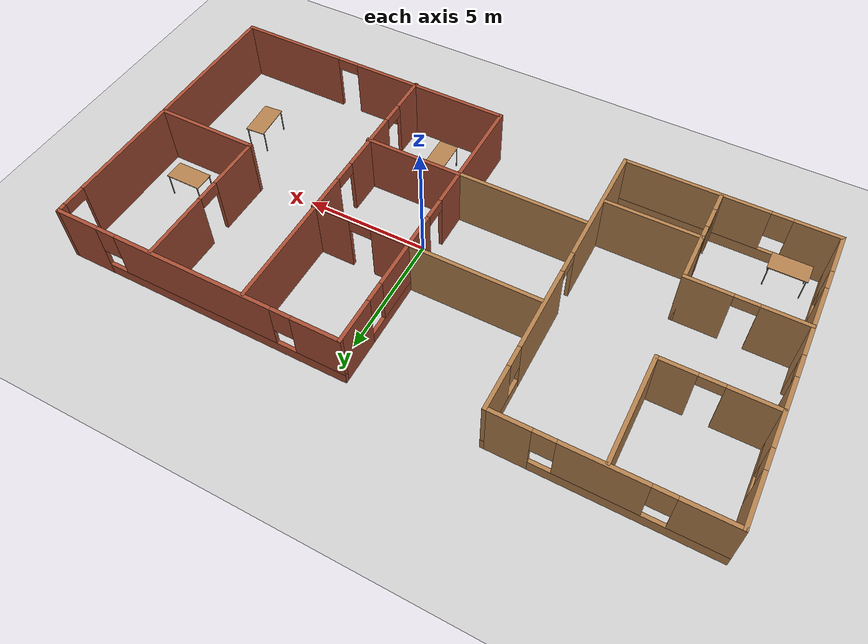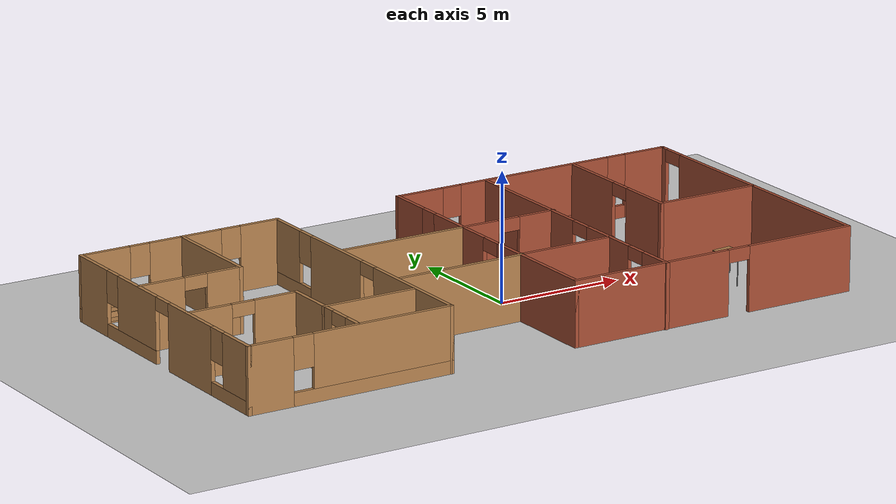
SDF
<sdf version="1.6">
 <world name="default">
  <plugin name="hello" filename="libhello.so"/>
  <light name="sun" type="directional">
   <pose>0 0 10 0 -0 0</pose>
   <diffuse>0.8 0.8 0.8 1</diffuse>
   <specular>0.2 0.2 0.2 1</specular>
   <attenuation>
    <range>1000</range>
    <constant>0.9</constant>
    <linear>0.01</linear>
    <quadratic>0.001</quadratic>
   </attenuation>
   <direction>-0.5 0.1 -0.9</direction>
  </light>
  <model name="ground_plane">
   <static>1</static>
   <link name="link">
    <collision name="collision">
     <geometry><plane><normal>0 0 1</normal><size>100 100</size></plane></geometry>
     <surface><friction><ode><mu>100</mu><mu2>50</mu2></ode></friction></surface>
    </collision>
    <visual name="visual">
     <cast_shadows>0</cast_shadows>
     <geometry><plane><normal>0 0 1</normal><size>100 100</size></plane></geometry>
     <material>
      <script><uri>file://media/materials/scripts/gazebo.material</uri><name>Gazebo/Grey</name></script>
     </material>
    </visual>
   </link>
  </model>
  <gravity>0 0 -9.8</gravity>
  <magnetic_field>6e-06 2.3e-05 -4.2e-05</magnetic_field>
  <atmosphere type="adiabatic"/>
  <physics name="default_physics" default="0" type="ode">
   <max_step_size>0.001</max_step_size>
   <real_time_factor>1</real_time_factor>
   <real_time_update_rate>1000</real_time_update_rate>
  </physics>
  <scene><ambient>0.4 0.4 0.4 1</ambient><background>0.7 0.7 0.7 1</background><shadows>1</shadows></scene>
  <spherical_coordinates>
   <surface_model>EARTH_WGS84</surface_model>
   <latitude_deg>0</latitude_deg>
   <longitude_deg>0</longitude_deg>
   <elevation>0</elevation>
   <heading_deg>0</heading_deg>
  </spherical_coordinates>
  <model name="myhouse">
   <pose>-1.2083 0.35018 0 0 -0 0</pose>
   <link name="Wall_0">
    <pose>6.64634 -5.89616 0 0 -0 0</pose>
    <visual name="Wall_0_Visual_0">
     <pose>-2.69638 0 1.25 0 -0 0</pose>
     <geometry><box><size>6.60723 0.15 2.5</size></box></geometry>
     <material>
      <script><uri>file://media/materials/scripts/gazebo.material</uri><name>Gazebo/Bricks</name></script>
      <ambient>0.760784 0.662745 0.627451 1</ambient>
     </material>
     <meta><layer>0</layer></meta>
    </visual>
    <collision name="Wall_0_Collision_0">
     <geometry><box><size>6.60723 0.15 2.5</size></box></geometry>
     <pose>-2.69638 0 1.25 0 -0 0</pose>
    </collision>
    <visual name="Wall_0_Visual_1">
     <pose>3.75362 0 1.25 0 -0 0</pose>
     <geometry><box><size>4.49277 0.15 2.5</size></box></geometry>
     <material>
      <script><uri>file://media/materials/scripts/gazebo.material</uri><name>Gazebo/Bricks</name></script>
      <ambient>0.760784 0.662745 0.627451 1</ambient>
     </material>
     <meta><layer>0</layer></meta>
    </visual>
    <collision name="Wall_0_Collision_1">
     <geometry><box><size>4.49277 0.15 2.5</size></box></geometry>
     <pose>3.75362 0 1.25 0 -0 0</pose>
    </collision>
    <visual name="Wall_0_Visual_2">
     <pose>1.05723 0 2.25 0 -0 0</pose>
     <geometry><box><size>0.9 0.15 0.5</size></box></geometry>
     <material>
      <script><uri>file://media/materials/scripts/gazebo.material</uri><name>Gazebo/Bricks</name></script>
      <ambient>0.760784 0.662745 0.627451 1</ambient>
     </material>
     <meta><layer>0</layer></meta>
    </visual>
    <collision name="Wall_0_Collision_2">
     <geometry><box><size>0.9 0.15 0.5</size></box></geometry>
     <pose>1.05723 0 2.25 0 -0 0</pose>
    </collision>
   </link>
   <link name="Wall_1">
    <pose>12.5713 0.028839 0 0 -0 1.5708</pose>
    <visual name="Wall_1_Visual_0">
     <pose>-0.649931 0 1.25 0 -0 0</pose>
     <geometry><box><size>10.7001 0.15 2.5</size></box></geometry>
     <material>
      <script><uri>file://media/materials/scripts/gazebo.material</uri><name>Gazebo/Bricks</name></script>
      <ambient>0.760784 0.662745 0.627451 1</ambient>
     </material>
     <meta><layer>0</layer></meta>
    </visual>
    <collision name="Wall_1_Collision_0">
     <geometry><box><size>10.7001 0.15 2.5</size></box></geometry>
     <pose>-0.649931 0 1.25 0 -0 0</pose>
    </collision>
    <visual name="Wall_1_Visual_1">
     <pose>5.80007 0 1.25 0 -0 0</pose>
     <geometry><box><size>0.399862 0.15 2.5</size></box></geometry>
     <material>
      <script><uri>file://media/materials/scripts/gazebo.material</uri><name>Gazebo/Bricks</name></script>
      <ambient>0.760784 0.662745 0.627451 1</ambient>
     </material>
     <meta><layer>0</layer></meta>
    </visual>
    <collision name="Wall_1_Collision_1">
     <geometry><box><size>0.399862 0.15 2.5</size></box></geometry>
     <pose>5.80007 0 1.25 0 -0 0</pose>
    </collision>
    <visual name="Wall_1_Visual_2">
     <pose>5.15014 0 2.25 0 -0 0</pose>
     <geometry><box><size>0.9 0.15 0.5</size></box></geometry>
     <material>
      <script><uri>file://media/materials/scripts/gazebo.material</uri><name>Gazebo/Bricks</name></script>
      <ambient>0.760784 0.662745 0.627451 1</ambient>
     </material>
     <meta><layer>0</layer></meta>
    </visual>
    <collision name="Wall_1_Collision_2">
     <geometry><box><size>0.9 0.15 0.5</size></box></geometry>
     <pose>5.15014 0 2.25 0 -0 0</pose>
    </collision>
   </link>
   <link name="Wall_10">
    <pose>8.43683 2.96482 0 0 -0 1.5708</pose>
    <visual name="Wall_10_Visual_0">
     <pose>-1.85682 0 1.25 0 -0 0</pose>
     <geometry><box><size>2.28635 0.15 2.5</size></box></geometry>
     <material>
      <script><uri>file://media/materials/scripts/gazebo.material</uri><name>Gazebo/Bricks</name></script>
      <ambient>0.760784 0.662745 0.627451 1</ambient>
     </material>
     <meta><layer>0</layer></meta>
    </visual>
    <collision name="Wall_10_Collision_0">
     <geometry><box><size>2.28635 0.15 2.5</size></box></geometry>
     <pose>-1.85682 0 1.25 0 -0 0</pose>
    </collision>
    <visual name="Wall_10_Visual_1">
     <pose>1.59318 0 1.25 0 -0 0</pose>
     <geometry><box><size>2.81365 0.15 2.5</size></box></geometry>
     <material>
      <script><uri>file://media/materials/scripts/gazebo.material</uri><name>Gazebo/Bricks</name></script>
      <ambient>0.760784 0.662745 0.627451 1</ambient>
     </material>
     <meta><layer>0</layer></meta>
    </visual>
    <collision name="Wall_10_Collision_1">
     <geometry><box><size>2.81365 0.15 2.5</size></box></geometry>
     <pose>1.59318 0 1.25 0 -0 0</pose>
    </collision>
    <visual name="Wall_10_Visual_2">
     <pose>-0.26365 0 2.25 0 -0 0</pose>
     <geometry><box><size>0.9 0.15 0.5</size></box></geometry>
     <material>
      <script><uri>file://media/materials/scripts/gazebo.material</uri><name>Gazebo/Bricks</name></script>
      <ambient>0.760784 0.662745 0.627451 1</ambient>
     </material>
     <meta><layer>0</layer></meta>
    </visual>
    <collision name="Wall_10_Collision_2">
     <geometry><box><size>0.9 0.15 0.5</size></box></geometry>
     <pose>-0.26365 0 2.25 0 -0 0</pose>
    </collision>
   </link>
   <link name="Wall_12">
    <pose>2.68459 1.47756 0 0 -0 0</pose>
    <visual name="Wall_12_Visual_0">
     <pose>-1.2392 0 1.25 0 -0 0</pose>
     <geometry><box><size>1.5216 0.15 2.5</size></box></geometry>
     <material>
      <script><uri>file://media/materials/scripts/gazebo.material</uri><name>Gazebo/Bricks</name></script>
      <ambient>0.760784 0.662745 0.627451 1</ambient>
     </material>
     <meta><layer>0</layer></meta>
    </visual>
    <collision name="Wall_12_Collision_0">
     <geometry><box><size>1.5216 0.15 2.5</size></box></geometry>
     <pose>-1.2392 0 1.25 0 -0 0</pose>
    </collision>
    <visual name="Wall_12_Visual_1">
     <pose>1.2108 0 1.25 0 -0 0</pose>
     <geometry><box><size>1.57841 0.15 2.5</size></box></geometry>
     <material>
      <script><uri>file://media/materials/scripts/gazebo.material</uri><name>Gazebo/Bricks</name></script>
      <ambient>0.760784 0.662745 0.627451 1</ambient>
     </material>
     <meta><layer>0</layer></meta>
    </visual>
    <collision name="Wall_12_Collision_1">
     <geometry><box><size>1.57841 0.15 2.5</size></box></geometry>
     <pose>1.2108 0 1.25 0 -0 0</pose>
    </collision>
    <visual name="Wall_12_Visual_2">
     <pose>-0.028405 0 2.25 0 -0 0</pose>
     <geometry><box><size>0.9 0.15 0.5</size></box></geometry>
     <material>
      <script><uri>file://media/materials/scripts/gazebo.material</uri><name>Gazebo/Bricks</name></script>
      <ambient>0.760784 0.662745 0.627451 1</ambient>
     </material>
     <meta><layer>0</layer></meta>
    </visual>
    <collision name="Wall_12_Collision_2">
     <geometry><box><size>0.9 0.15 0.5</size></box></geometry>
     <pose>-0.028405 0 2.25 0 -0 0</pose>
    </collision>
   </link>
   <link name="Wall_14">
    <collision name="Wall_14_Collision">
     <geometry><box><size>4 0.15 2.5</size></box></geometry>
     <pose>0 0 1.25 0 -0 0</pose>
    </collision>
    <visual name="Wall_14_Visual">
     <pose>0 0 1.25 0 -0 0</pose>
     <geometry><box><size>4 0.15 2.5</size></box></geometry>
     <material>
      <script><uri>file://media/materials/scripts/gazebo.material</uri><name>Gazebo/Bricks</name></script>
      <ambient>0.760784 0.662745 0.627451 1</ambient>
     </material>
     <meta><layer>0</layer></meta>
    </visual>
    <pose>2.68459 -2.34622 0 0 -0 0</pose>
   </link>
   <link name="Wall_16">
    <collision name="Wall_16_Collision">
     <geometry><box><size>5.25 0.15 2.5</size></box></geometry>
     <pose>0 0 1.25 0 -0 0</pose>
    </collision>
    <visual name="Wall_16_Visual">
     <pose>0 0 1.25 0 -0 0</pose>
     <geometry><box><size>5.25 0.15 2.5</size></box></geometry>
     <material>
      <script><uri>file://media/materials/scripts/gazebo.material</uri><name>Gazebo/Wood</name></script>
      <ambient>0 0 0 1</ambient>
     </material>
     <meta><layer>0</layer></meta>
    </visual>
    <pose>-1.79041 1.47756 0 0 -0 3.14159</pose>
   </link>
   <link name="Wall_18">
    <collision name="Wall_18_Collision">
     <geometry><box><size>5.25 0.15 2.5</size></box></geometry>
     <pose>0 0 1.25 0 -0 0</pose>
    </collision>
    <visual name="Wall_18_Visual">
     <pose>0 0 1.25 0 -0 0</pose>
     <geometry><box><size>5.25 0.15 2.5</size></box></geometry>
     <material>
      <script><uri>file://media/materials/scripts/gazebo.material</uri><name>Gazebo/Wood</name></script>
      <ambient>0 0 0 1</ambient>
     </material>
     <meta><layer>0</layer></meta>
    </visual>
    <pose>-1.79041 -2.37244 0 0 -0 0</pose>
   </link>
   <link name="Wall_2">
    <pose>6.64634 5.95384 0 0 -0 3.14159</pose>
    <visual name="Wall_2_Visual_0">
     <pose>-5.07459 0 1.25 0 -0 0</pose>
     <geometry><box><size>1.85083 0.15 2.5</size></box></geometry>
     <material>
      <script><uri>file://media/materials/scripts/gazebo.material</uri><name>Gazebo/Bricks</name></script>
      <ambient>0.760784 0.662745 0.627451 1</ambient>
     </material>
     <meta><layer>0</layer></meta>
    </visual>
    <collision name="Wall_2_Collision_0">
     <geometry><box><size>1.85083 0.15 2.5</size></box></geometry>
     <pose>-5.07459 0 1.25 0 -0 0</pose>
    </collision>
    <visual name="Wall_2_Visual_1">
     <pose>0.925414 0 0.25 0 -0 0</pose>
     <geometry><box><size>10.1492 0.15 0.5</size></box></geometry>
     <material>
      <script><uri>file://media/materials/scripts/gazebo.material</uri><name>Gazebo/Bricks</name></script>
      <ambient>0.760784 0.662745 0.627451 1</ambient>
     </material>
     <meta><layer>0</layer></meta>
    </visual>
    <collision name="Wall_2_Collision_1">
     <geometry><box><size>10.1492 0.15 0.5</size></box></geometry>
     <pose>0.925414 0 0.25 0 -0 0</pose>
    </collision>
    <visual name="Wall_2_Visual_2">
     <pose>-0.06305 0 1.5 0 -0 0</pose>
     <geometry><box><size>6.57224 0.15 2</size></box></geometry>
     <material>
      <script><uri>file://media/materials/scripts/gazebo.material</uri><name>Gazebo/Bricks</name></script>
      <ambient>0.760784 0.662745 0.627451 1</ambient>
     </material>
     <meta><layer>0</layer></meta>
    </visual>
    <collision name="Wall_2_Collision_2">
     <geometry><box><size>6.57224 0.15 2</size></box></geometry>
     <pose>-0.06305 0 1.5 0 -0 0</pose>
    </collision>
    <visual name="Wall_2_Visual_3">
     <pose>5.01154 0 1.5 0 -0 0</pose>
     <geometry><box><size>1.97693 0.15 2</size></box></geometry>
     <material>
      <script><uri>file://media/materials/scripts/gazebo.material</uri><name>Gazebo/Bricks</name></script>
      <ambient>0.760784 0.662745 0.627451 1</ambient>
     </material>
     <meta><layer>0</layer></meta>
    </visual>
    <collision name="Wall_2_Collision_3">
     <geometry><box><size>1.97693 0.15 2</size></box></geometry>
     <pose>5.01154 0 1.5 0 -0 0</pose>
    </collision>
    <visual name="Wall_2_Visual_4">
     <pose>-3.74917 0 1.9 0 -0 0</pose>
     <geometry><box><size>0.8 0.15 1.2</size></box></geometry>
     <material>
      <script><uri>file://media/materials/scripts/gazebo.material</uri><name>Gazebo/Bricks</name></script>
      <ambient>0.760784 0.662745 0.627451 1</ambient>
     </material>
     <meta><layer>0</layer></meta>
    </visual>
    <collision name="Wall_2_Collision_4">
     <geometry><box><size>0.8 0.15 1.2</size></box></geometry>
     <pose>-3.74917 0 1.9 0 -0 0</pose>
    </collision>
    <visual name="Wall_2_Visual_5">
     <pose>3.62307 0 1.9 0 -0 0</pose>
     <geometry><box><size>0.8 0.15 1.2</size></box></geometry>
     <material>
      <script><uri>file://media/materials/scripts/gazebo.material</uri><name>Gazebo/Bricks</name></script>
      <ambient>0.760784 0.662745 0.627451 1</ambient>
     </material>
     <meta><layer>0</layer></meta>
    </visual>
    <collision name="Wall_2_Collision_5">
     <geometry><box><size>0.8 0.15 1.2</size></box></geometry>
     <pose>3.62307 0 1.9 0 -0 0</pose>
    </collision>
   </link>
   <link name="Wall_21">
    <pose>-4.47134 0.030313 0 0 -0 1.5708</pose>
    <visual name="Wall_21_Visual_0">
     <pose>-3.44968 0 1.25 0 -0 0</pose>
     <geometry><box><size>5.10065 0.15 2.5</size></box></geometry>
     <material>
      <script><uri>file://media/materials/scripts/gazebo.material</uri><name>Gazebo/Wood</name></script>
      <ambient>0.333333 1 0 1</ambient>
     </material>
     <meta><layer>0</layer></meta>
    </visual>
    <collision name="Wall_21_Collision_0">
     <geometry><box><size>5.10065 0.15 2.5</size></box></geometry>
     <pose>-3.44968 0 1.25 0 -0 0</pose>
    </collision>
    <visual name="Wall_21_Visual_1">
     <pose>1.71697 0 1.25 0 -0 0</pose>
     <geometry><box><size>3.43263 0.15 2.5</size></box></geometry>
     <material>
      <script><uri>file://media/materials/scripts/gazebo.material</uri><name>Gazebo/Wood</name></script>
      <ambient>0.333333 1 0 1</ambient>
     </material>
     <meta><layer>0</layer></meta>
    </visual>
    <collision name="Wall_21_Collision_1">
     <geometry><box><size>3.43263 0.15 2.5</size></box></geometry>
     <pose>1.71697 0 1.25 0 -0 0</pose>
    </collision>
    <visual name="Wall_21_Visual_2">
     <pose>4.71664 0 0.25 0 -0 0</pose>
     <geometry><box><size>2.56672 0.15 0.5</size></box></geometry>
     <material>
      <script><uri>file://media/materials/scripts/gazebo.material</uri><name>Gazebo/Wood</name></script>
      <ambient>0.333333 1 0 1</ambient>
     </material>
     <meta><layer>0</layer></meta>
    </visual>
    <collision name="Wall_21_Collision_2">
     <geometry><box><size>2.56672 0.15 0.5</size></box></geometry>
     <pose>4.71664 0 0.25 0 -0 0</pose>
    </collision>
    <visual name="Wall_21_Visual_3">
     <pose>5.11664 0 1.5 0 -0 0</pose>
     <geometry><box><size>1.76672 0.15 2</size></box></geometry>
     <material>
      <script><uri>file://media/materials/scripts/gazebo.material</uri><name>Gazebo/Wood</name></script>
      <ambient>0.333333 1 0 1</ambient>
     </material>
     <meta><layer>0</layer></meta>
    </visual>
    <collision name="Wall_21_Collision_3">
     <geometry><box><size>1.76672 0.15 2</size></box></geometry>
     <pose>5.11664 0 1.5 0 -0 0</pose>
    </collision>
    <visual name="Wall_21_Visual_4">
     <pose>3.83328 0 1.9 0 -0 0</pose>
     <geometry><box><size>0.8 0.15 1.2</size></box></geometry>
     <material>
      <script><uri>file://media/materials/scripts/gazebo.material</uri><name>Gazebo/Wood</name></script>
      <ambient>0.333333 1 0 1</ambient>
     </material>
     <meta><layer>0</layer></meta>
    </visual>
    <collision name="Wall_21_Collision_4">
     <geometry><box><size>0.8 0.15 1.2</size></box></geometry>
     <pose>3.83328 0 1.9 0 -0 0</pose>
    </collision>
    <visual name="Wall_21_Visual_5">
     <pose>-0.449349 0 2.25 0 -0 0</pose>
     <geometry><box><size>0.9 0.15 0.5</size></box></geometry>
     <material>
      <script><uri>file://media/materials/scripts/gazebo.material</uri><name>Gazebo/Wood</name></script>
      <ambient>0.333333 1 0 1</ambient>
     </material>
     <meta><layer>0</layer></meta>
    </visual>
    <collision name="Wall_21_Collision_5">
     <geometry><box><size>0.9 0.15 0.5</size></box></geometry>
     <pose>-0.449349 0 2.25 0 -0 0</pose>
    </collision>
   </link>
   <link name="Wall_22">
    <pose>-8.52134 5.95531 0 0 -0 3.14159</pose>
    <visual name="Wall_22_Visual_0">
     <pose>-3.29332 0 1.25 0 -0 0</pose>
     <geometry><box><size>1.66337 0.15 2.5</size></box></geometry>
     <material>
      <script><uri>file://media/materials/scripts/gazebo.material</uri><name>Gazebo/Wood</name></script>
      <ambient>0.333333 1 0 1</ambient>
     </material>
     <meta><layer>0</layer></meta>
    </visual>
    <collision name="Wall_22_Collision_0">
     <geometry><box><size>1.66337 0.15 2.5</size></box></geometry>
     <pose>-3.29332 0 1.25 0 -0 0</pose>
    </collision>
    <visual name="Wall_22_Visual_1">
     <pose>0.831683 0 0.25 0 -0 0</pose>
     <geometry><box><size>6.58663 0.15 0.5</size></box></geometry>
     <material>
      <script><uri>file://media/materials/scripts/gazebo.material</uri><name>Gazebo/Wood</name></script>
      <ambient>0.333333 1 0 1</ambient>
     </material>
     <meta><layer>0</layer></meta>
    </visual>
    <collision name="Wall_22_Collision_1">
     <geometry><box><size>6.58663 0.15 0.5</size></box></geometry>
     <pose>0.831683 0 0.25 0 -0 0</pose>
    </collision>
    <visual name="Wall_22_Visual_2">
     <pose>-0.180335 0 1.5 0 -0 0</pose>
     <geometry><box><size>2.9626 0.15 2</size></box></geometry>
     <material>
      <script><uri>file://media/materials/scripts/gazebo.material</uri><name>Gazebo/Wood</name></script>
      <ambient>0.333333 1 0 1</ambient>
     </material>
     <meta><layer>0</layer></meta>
    </visual>
    <collision name="Wall_22_Collision_2">
     <geometry><box><size>2.9626 0.15 2</size></box></geometry>
     <pose>-0.180335 0 1.5 0 -0 0</pose>
    </collision>
    <visual name="Wall_22_Visual_3">
     <pose>3.11298 0 1.5 0 -0 0</pose>
     <geometry><box><size>2.02404 0.15 2</size></box></geometry>
     <material>
      <script><uri>file://media/materials/scripts/gazebo.material</uri><name>Gazebo/Wood</name></script>
      <ambient>0.333333 1 0 1</ambient>
     </material>
     <meta><layer>0</layer></meta>
    </visual>
    <collision name="Wall_22_Collision_3">
     <geometry><box><size>2.02404 0.15 2</size></box></geometry>
     <pose>3.11298 0 1.5 0 -0 0</pose>
    </collision>
    <visual name="Wall_22_Visual_4">
     <pose>-2.06163 0 1.9 0 -0 0</pose>
     <geometry><box><size>0.8 0.15 1.2</size></box></geometry>
     <material>
      <script><uri>file://media/materials/scripts/gazebo.material</uri><name>Gazebo/Wood</name></script>
      <ambient>0.333333 1 0 1</ambient>
     </material>
     <meta><layer>0</layer></meta>
    </visual>
    <collision name="Wall_22_Collision_4">
     <geometry><box><size>0.8 0.15 1.2</size></box></geometry>
     <pose>-2.06163 0 1.9 0 -0 0</pose>
    </collision>
    <visual name="Wall_22_Visual_5">
     <pose>1.70096 0 1.9 0 -0 0</pose>
     <geometry><box><size>0.8 0.15 1.2</size></box></geometry>
     <material>
      <script><uri>file://media/materials/scripts/gazebo.material</uri><name>Gazebo/Wood</name></script>
      <ambient>0.333333 1 0 1</ambient>
     </material>
     <meta><layer>0</layer></meta>
    </visual>
    <collision name="Wall_22_Collision_5">
     <geometry><box><size>0.8 0.15 1.2</size></box></geometry>
     <pose>1.70096 0 1.9 0 -0 0</pose>
    </collision>
   </link>
   <link name="Wall_23">
    <pose>-12.5713 0.030313 0 0 0 -1.5708</pose>
    <visual name="Wall_23_Visual_0">
     <pose>-4.96369 0 1.25 0 -0 0</pose>
     <geometry><box><size>2.07262 0.15 2.5</size></box></geometry>
     <material>
      <script><uri>file://media/materials/scripts/gazebo.material</uri><name>Gazebo/Wood</name></script>
      <ambient>0.333333 1 0 1</ambient>
     </material>
     <meta><layer>0</layer></meta>
    </visual>
    <collision name="Wall_23_Collision_0">
     <geometry><box><size>2.07262 0.15 2.5</size></box></geometry>
     <pose>-4.96369 0 1.25 0 -0 0</pose>
    </collision>
    <visual name="Wall_23_Visual_1">
     <pose>1.98856 0 1.25 0 -0 0</pose>
     <geometry><box><size>2.97378 0.15 2.5</size></box></geometry>
     <material>
      <script><uri>file://media/materials/scripts/gazebo.material</uri><name>Gazebo/Wood</name></script>
      <ambient>0.333333 1 0 1</ambient>
     </material>
     <meta><layer>0</layer></meta>
    </visual>
    <collision name="Wall_23_Collision_1">
     <geometry><box><size>2.97378 0.15 2.5</size></box></geometry>
     <pose>1.98856 0 1.25 0 -0 0</pose>
    </collision>
    <visual name="Wall_23_Visual_2">
     <pose>-2.16285 0 0.25 0 -0 0</pose>
     <geometry><box><size>3.52906 0.15 0.5</size></box></geometry>
     <material>
      <script><uri>file://media/materials/scripts/gazebo.material</uri><name>Gazebo/Wood</name></script>
      <ambient>0.333333 1 0 1</ambient>
     </material>
     <meta><layer>0</layer></meta>
    </visual>
    <collision name="Wall_23_Collision_2">
     <geometry><box><size>3.52906 0.15 0.5</size></box></geometry>
     <pose>-2.16285 0 0.25 0 -0 0</pose>
    </collision>
    <visual name="Wall_23_Visual_3">
     <pose>4.73773 0 0.25 0 -0 0</pose>
     <geometry><box><size>2.52454 0.15 0.5</size></box></geometry>
     <material>
      <script><uri>file://media/materials/scripts/gazebo.material</uri><name>Gazebo/Wood</name></script>
      <ambient>0.333333 1 0 1</ambient>
     </material>
     <meta><layer>0</layer></meta>
    </visual>
    <collision name="Wall_23_Collision_3">
     <geometry><box><size>2.52454 0.15 0.5</size></box></geometry>
     <pose>4.73773 0 0.25 0 -0 0</pose>
    </collision>
    <visual name="Wall_23_Visual_4">
     <pose>-1.76285 0 1.5 0 -0 0</pose>
     <geometry><box><size>2.72906 0.15 2</size></box></geometry>
     <material>
      <script><uri>file://media/materials/scripts/gazebo.material</uri><name>Gazebo/Wood</name></script>
      <ambient>0.333333 1 0 1</ambient>
     </material>
     <meta><layer>0</layer></meta>
    </visual>
    <collision name="Wall_23_Collision_4">
     <geometry><box><size>2.72906 0.15 2</size></box></geometry>
     <pose>-1.76285 0 1.5 0 -0 0</pose>
    </collision>
    <visual name="Wall_23_Visual_5">
     <pose>-1.76285 0 1.5 0 -0 0</pose>
     <geometry><box><size>2.72906 0.15 2</size></box></geometry>
     <material>
      <script><uri>file://media/materials/scripts/gazebo.material</uri><name>Gazebo/Wood</name></script>
      <ambient>0.333333 1 0 1</ambient>
     </material>
     <meta><layer>0</layer></meta>
    </visual>
    <collision name="Wall_23_Collision_5">
     <geometry><box><size>2.72906 0.15 2</size></box></geometry>
     <pose>-1.76285 0 1.5 0 -0 0</pose>
    </collision>
    <visual name="Wall_23_Visual_6">
     <pose>5.13773 0 1.5 0 -0 0</pose>
     <geometry><box><size>1.72454 0.15 2</size></box></geometry>
     <material>
      <script><uri>file://media/materials/scripts/gazebo.material</uri><name>Gazebo/Wood</name></script>
      <ambient>0.333333 1 0 1</ambient>
     </material>
     <meta><layer>0</layer></meta>
    </visual>
    <collision name="Wall_23_Collision_6">
     <geometry><box><size>1.72454 0.15 2</size></box></geometry>
     <pose>5.13773 0 1.5 0 -0 0</pose>
    </collision>
    <visual name="Wall_23_Visual_7">
     <pose>-3.52738 0 1.9 0 -0 0</pose>
     <geometry><box><size>0.8 0.15 1.2</size></box></geometry>
     <material>
      <script><uri>file://media/materials/scripts/gazebo.material</uri><name>Gazebo/Wood</name></script>
      <ambient>0.333333 1 0 1</ambient>
     </material>
     <meta><layer>0</layer></meta>
    </visual>
    <collision name="Wall_23_Collision_7">
     <geometry><box><size>0.8 0.15 1.2</size></box></geometry>
     <pose>-3.52738 0 1.9 0 -0 0</pose>
    </collision>
    <visual name="Wall_23_Visual_8">
     <pose>3.87546 0 1.9 0 -0 0</pose>
     <geometry><box><size>0.8 0.15 1.2</size></box></geometry>
     <material>
      <script><uri>file://media/materials/scripts/gazebo.material</uri><name>Gazebo/Wood</name></script>
      <ambient>0.333333 1 0 1</ambient>
     </material>
     <meta><layer>0</layer></meta>
    </visual>
    <collision name="Wall_23_Collision_8">
     <geometry><box><size>0.8 0.15 1.2</size></box></geometry>
     <pose>3.87546 0 1.9 0 -0 0</pose>
    </collision>
    <visual name="Wall_23_Visual_9">
     <pose>0.051676 0 2.25 0 -0 0</pose>
     <geometry><box><size>0.9 0.15 0.5</size></box></geometry>
     <material>
      <script><uri>file://media/materials/scripts/gazebo.material</uri><name>Gazebo/Wood</name></script>
      <ambient>0.333333 1 0 1</ambient>
     </material>
     <meta><layer>0</layer></meta>
    </visual>
    <collision name="Wall_23_Collision_9">
     <geometry><box><size>0.9 0.15 0.5</size></box></geometry>
     <pose>0.051676 0 2.25 0 -0 0</pose>
    </collision>
    <visual name="Wall_23_Visual_10">
     <pose>0.051676 0 2.25 0 -0 0</pose>
     <geometry><box><size>0.9 0.15 0.5</size></box></geometry>
     <material>
      <script><uri>file://media/materials/scripts/gazebo.material</uri><name>Gazebo/Wood</name></script>
      <ambient>0.333333 1 0 1</ambient>
     </material>
     <meta><layer>0</layer></meta>
    </visual>
    <collision name="Wall_23_Collision_10">
     <geometry><box><size>0.9 0.15 0.5</size></box></geometry>
     <pose>0.051676 0 2.25 0 -0 0</pose>
    </collision>
   </link>
   <link name="Wall_24">
    <pose>-8.52134 -5.89469 0 0 -0 0</pose>
    <visual name="Wall_24_Visual_0">
     <pose>-3.22005 0 1.25 0 -0 0</pose>
     <geometry><box><size>1.8099 0.15 2.5</size></box></geometry>
     <material>
      <script><uri>file://media/materials/scripts/gazebo.material</uri><name>Gazebo/Wood</name></script>
      <ambient>0.333333 1 0 1</ambient>
     </material>
     <meta><layer>0</layer></meta>
    </visual>
    <collision name="Wall_24_Collision_0">
     <geometry><box><size>1.8099 0.15 2.5</size></box></geometry>
     <pose>-3.22005 0 1.25 0 -0 0</pose>
    </collision>
    <visual name="Wall_24_Visual_1">
     <pose>0.904952 0 0.25 0 -0 0</pose>
     <geometry><box><size>6.4401 0.15 0.5</size></box></geometry>
     <material>
      <script><uri>file://media/materials/scripts/gazebo.material</uri><name>Gazebo/Wood</name></script>
      <ambient>0.333333 1 0 1</ambient>
     </material>
     <meta><layer>0</layer></meta>
    </visual>
    <collision name="Wall_24_Collision_1">
     <geometry><box><size>6.4401 0.15 0.5</size></box></geometry>
     <pose>0.904952 0 0.25 0 -0 0</pose>
    </collision>
    <visual name="Wall_24_Visual_2">
     <pose>1.30495 0 1.5 0 -0 0</pose>
     <geometry><box><size>5.6401 0.15 2</size></box></geometry>
     <material>
      <script><uri>file://media/materials/scripts/gazebo.material</uri><name>Gazebo/Wood</name></script>
      <ambient>0.333333 1 0 1</ambient>
     </material>
     <meta><layer>0</layer></meta>
    </visual>
    <collision name="Wall_24_Collision_2">
     <geometry><box><size>5.6401 0.15 2</size></box></geometry>
     <pose>1.30495 0 1.5 0 -0 0</pose>
    </collision>
    <visual name="Wall_24_Visual_3">
     <pose>-1.9151 0 1.9 0 -0 0</pose>
     <geometry><box><size>0.8 0.15 1.2</size></box></geometry>
     <material>
      <script><uri>file://media/materials/scripts/gazebo.material</uri><name>Gazebo/Wood</name></script>
      <ambient>0.333333 1 0 1</ambient>
     </material>
     <meta><layer>0</layer></meta>
    </visual>
    <collision name="Wall_24_Collision_3">
     <geometry><box><size>0.8 0.15 1.2</size></box></geometry>
     <pose>-1.9151 0 1.9 0 -0 0</pose>
    </collision>
   </link>
   <link name="Wall_26">
    <pose>-10.4972 1.78346 0 0 -0 0</pose>
    <visual name="Wall_26_Visual_0">
     <pose>-1.18066 0 1.25 0 -0 0</pose>
     <geometry><box><size>1.88868 0.15 2.5</size></box></geometry>
     <material>
      <script><uri>file://media/materials/scripts/gazebo.material</uri><name>Gazebo/Wood</name></script>
      <ambient>0.333333 1 0 1</ambient>
     </material>
     <meta><layer>0</layer></meta>
    </visual>
    <collision name="Wall_26_Collision_0">
     <geometry><box><size>1.88868 0.15 2.5</size></box></geometry>
     <pose>-1.18066 0 1.25 0 -0 0</pose>
    </collision>
    <visual name="Wall_26_Visual_1">
     <pose>1.39434 0 1.25 0 -0 0</pose>
     <geometry><box><size>1.46132 0.15 2.5</size></box></geometry>
     <material>
      <script><uri>file://media/materials/scripts/gazebo.material</uri><name>Gazebo/Wood</name></script>
      <ambient>0.333333 1 0 1</ambient>
     </material>
     <meta><layer>0</layer></meta>
    </visual>
    <collision name="Wall_26_Collision_1">
     <geometry><box><size>1.46132 0.15 2.5</size></box></geometry>
     <pose>1.39434 0 1.25 0 -0 0</pose>
    </collision>
    <visual name="Wall_26_Visual_2">
     <pose>0.213676 0 2.25 0 -0 0</pose>
     <geometry><box><size>0.9 0.15 0.5</size></box></geometry>
     <material>
      <script><uri>file://media/materials/scripts/gazebo.material</uri><name>Gazebo/Wood</name></script>
      <ambient>0.333333 1 0 1</ambient>
     </material>
     <meta><layer>0</layer></meta>
    </visual>
    <collision name="Wall_26_Collision_2">
     <geometry><box><size>0.9 0.15 0.5</size></box></geometry>
     <pose>0.213676 0 2.25 0 -0 0</pose>
    </collision>
   </link>
   <link name="Wall_27">
    <collision name="Wall_27_Collision">
     <geometry><box><size>4.25 0.15 2.5</size></box></geometry>
     <pose>0 0 1.25 0 -0 0</pose>
    </collision>
    <visual name="Wall_27_Visual">
     <pose>0 0 1.25 0 -0 0</pose>
     <geometry><box><size>4.25 0.15 2.5</size></box></geometry>
     <material>
      <script><uri>file://media/materials/scripts/gazebo.material</uri><name>Gazebo/Wood</name></script>
      <ambient>0.333333 1 0 1</ambient>
     </material>
     <meta><layer>0</layer></meta>
    </visual>
    <pose>-8.44716 3.83346 0 0 -0 1.5708</pose>
   </link>
   <link name="Wall_29">
    <pose>-10.3722 -1.70382 0 0 -0 0</pose>
    <visual name="Wall_29_Visual_0">
     <pose>-1.35155 0 1.25 0 -0 0</pose>
     <geometry><box><size>1.79691 0.15 2.5</size></box></geometry>
     <material>
      <script><uri>file://media/materials/scripts/gazebo.material</uri><name>Gazebo/Wood</name></script>
      <ambient>0.333333 1 0 1</ambient>
     </material>
     <meta><layer>0</layer></meta>
    </visual>
    <collision name="Wall_29_Collision_0">
     <geometry><box><size>1.79691 0.15 2.5</size></box></geometry>
     <pose>-1.35155 0 1.25 0 -0 0</pose>
    </collision>
    <visual name="Wall_29_Visual_1">
     <pose>1.34845 0 1.25 0 -0 0</pose>
     <geometry><box><size>1.80309 0.15 2.5</size></box></geometry>
     <material>
      <script><uri>file://media/materials/scripts/gazebo.material</uri><name>Gazebo/Wood</name></script>
      <ambient>0.333333 1 0 1</ambient>
     </material>
     <meta><layer>0</layer></meta>
    </visual>
    <collision name="Wall_29_Collision_1">
     <geometry><box><size>1.80309 0.15 2.5</size></box></geometry>
     <pose>1.34845 0 1.25 0 -0 0</pose>
    </collision>
    <visual name="Wall_29_Visual_2">
     <pose>-0.003094 0 2.25 0 -0 0</pose>
     <geometry><box><size>0.9 0.15 0.5</size></box></geometry>
     <material>
      <script><uri>file://media/materials/scripts/gazebo.material</uri><name>Gazebo/Wood</name></script>
      <ambient>0.333333 1 0 1</ambient>
     </material>
     <meta><layer>0</layer></meta>
    </visual>
    <collision name="Wall_29_Collision_2">
     <geometry><box><size>0.9 0.15 0.5</size></box></geometry>
     <pose>-0.003094 0 2.25 0 -0 0</pose>
    </collision>
   </link>
   <link name="Wall_3">
    <pose>0.72134 0.028839 0 0 0 -1.5708</pose>
    <visual name="Wall_3_Visual_0">
     <pose>-5.07149 0 1.25 0 -0 0</pose>
     <geometry><box><size>1.85701 0.15 2.5</size></box></geometry>
     <material>
      <script><uri>file://media/materials/scripts/gazebo.material</uri><name>Gazebo/Bricks</name></script>
      <ambient>0.760784 0.662745 0.627451 1</ambient>
     </material>
     <meta><layer>0</layer></meta>
    </visual>
    <collision name="Wall_3_Collision_0">
     <geometry><box><size>1.85701 0.15 2.5</size></box></geometry>
     <pose>-5.07149 0 1.25 0 -0 0</pose>
    </collision>
    <visual name="Wall_3_Visual_1">
     <pose>3.44894 0 1.25 0 -0 0</pose>
     <geometry><box><size>5.10213 0.15 2.5</size></box></geometry>
     <material>
      <script><uri>file://media/materials/scripts/gazebo.material</uri><name>Gazebo/Bricks</name></script>
      <ambient>0.760784 0.662745 0.627451 1</ambient>
     </material>
     <meta><layer>0</layer></meta>
    </visual>
    <collision name="Wall_3_Collision_1">
     <geometry><box><size>5.10213 0.15 2.5</size></box></geometry>
     <pose>3.44894 0 1.25 0 -0 0</pose>
    </collision>
    <visual name="Wall_3_Visual_2">
     <pose>-2.07256 0 0.25 0 -0 0</pose>
     <geometry><box><size>4.14086 0.15 0.5</size></box></geometry>
     <material>
      <script><uri>file://media/materials/scripts/gazebo.material</uri><name>Gazebo/Bricks</name></script>
      <ambient>0.760784 0.662745 0.627451 1</ambient>
     </material>
     <meta><layer>0</layer></meta>
    </visual>
    <collision name="Wall_3_Collision_2">
     <geometry><box><size>4.14086 0.15 0.5</size></box></geometry>
     <pose>-2.07256 0 0.25 0 -0 0</pose>
    </collision>
    <visual name="Wall_3_Visual_3">
     <pose>-1.67256 0 1.5 0 -0 0</pose>
     <geometry><box><size>3.34086 0.15 2</size></box></geometry>
     <material>
      <script><uri>file://media/materials/scripts/gazebo.material</uri><name>Gazebo/Bricks</name></script>
      <ambient>0.760784 0.662745 0.627451 1</ambient>
     </material>
     <meta><layer>0</layer></meta>
    </visual>
    <collision name="Wall_3_Collision_3">
     <geometry><box><size>3.34086 0.15 2</size></box></geometry>
     <pose>-1.67256 0 1.5 0 -0 0</pose>
    </collision>
    <visual name="Wall_3_Visual_4">
     <pose>-3.74299 0 1.9 0 -0 0</pose>
     <geometry><box><size>0.8 0.15 1.2</size></box></geometry>
     <material>
      <script><uri>file://media/materials/scripts/gazebo.material</uri><name>Gazebo/Bricks</name></script>
      <ambient>0.760784 0.662745 0.627451 1</ambient>
     </material>
     <meta><layer>0</layer></meta>
    </visual>
    <collision name="Wall_3_Collision_4">
     <geometry><box><size>0.8 0.15 1.2</size></box></geometry>
     <pose>-3.74299 0 1.9 0 -0 0</pose>
    </collision>
    <visual name="Wall_3_Visual_5">
     <pose>0.447874 0 2.25 0 -0 0</pose>
     <geometry><box><size>0.9 0.15 0.5</size></box></geometry>
     <material>
      <script><uri>file://media/materials/scripts/gazebo.material</uri><name>Gazebo/Bricks</name></script>
      <ambient>0.760784 0.662745 0.627451 1</ambient>
     </material>
     <meta><layer>0</layer></meta>
    </visual>
    <collision name="Wall_3_Collision_5">
     <geometry><box><size>0.9 0.15 0.5</size></box></geometry>
     <pose>0.447874 0 2.25 0 -0 0</pose>
    </collision>
   </link>
   <link name="Wall_30">
    <pose>-8.19716 -3.75382 0 0 0 -1.5708</pose>
    <visual name="Wall_30_Visual_0">
     <pose>-0.844169 0 1.25 0 -0 0</pose>
     <geometry><box><size>2.56166 0.15 2.5</size></box></geometry>
     <material>
      <script><uri>file://media/materials/scripts/gazebo.material</uri><name>Gazebo/Wood</name></script>
      <ambient>0.333333 1 0 1</ambient>
     </material>
     <meta><layer>0</layer></meta>
    </visual>
    <collision name="Wall_30_Collision_0">
     <geometry><box><size>2.56166 0.15 2.5</size></box></geometry>
     <pose>-0.844169 0 1.25 0 -0 0</pose>
    </collision>
    <visual name="Wall_30_Visual_1">
     <pose>1.73083 0 1.25 0 -0 0</pose>
     <geometry><box><size>0.788338 0.15 2.5</size></box></geometry>
     <material>
      <script><uri>file://media/materials/scripts/gazebo.material</uri><name>Gazebo/Wood</name></script>
      <ambient>0.333333 1 0 1</ambient>
     </material>
     <meta><layer>0</layer></meta>
    </visual>
    <collision name="Wall_30_Collision_1">
     <geometry><box><size>0.788338 0.15 2.5</size></box></geometry>
     <pose>1.73083 0 1.25 0 -0 0</pose>
    </collision>
    <visual name="Wall_30_Visual_2">
     <pose>0.886662 0 2.25 0 -0 0</pose>
     <geometry><box><size>0.9 0.15 0.5</size></box></geometry>
     <material>
      <script><uri>file://media/materials/scripts/gazebo.material</uri><name>Gazebo/Wood</name></script>
      <ambient>0.333333 1 0 1</ambient>
     </material>
     <meta><layer>0</layer></meta>
    </visual>
    <collision name="Wall_30_Collision_2">
     <geometry><box><size>0.9 0.15 0.5</size></box></geometry>
     <pose>0.886662 0 2.25 0 -0 0</pose>
    </collision>
   </link>
   <link name="Wall_32">
    <collision name="Wall_32_Collision">
     <geometry><box><size>3.75 0.15 2.5</size></box></geometry>
     <pose>0 0 1.25 0 -0 0</pose>
    </collision>
    <visual name="Wall_32_Visual">
     <pose>0 0 1.25 0 -0 0</pose>
     <geometry><box><size>3.75 0.15 2.5</size></box></geometry>
     <material>
      <script><uri>file://media/materials/scripts/gazebo.material</uri><name>Gazebo/Wood</name></script>
      <ambient>0.333333 1 0 1</ambient>
     </material>
     <meta><layer>0</layer></meta>
    </visual>
    <pose>-6.40335 -3.63101 0 0 -0 0</pose>
   </link>
   <link name="Wall_7">
    <pose>4.55352 -0.030313 0 0 -0 1.5708</pose>
    <visual name="Wall_7_Visual_0">
     <pose>-5.23948 0 1.25 0 -0 0</pose>
     <geometry><box><size>1.52104 0.15 2.5</size></box></geometry>
     <material>
      <script><uri>file://media/materials/scripts/gazebo.material</uri><name>Gazebo/Bricks</name></script>
      <ambient>0.760784 0.662745 0.627451 1</ambient>
     </material>
     <meta><layer>0</layer></meta>
    </visual>
    <collision name="Wall_7_Collision_0">
     <geometry><box><size>1.52104 0.15 2.5</size></box></geometry>
     <pose>-5.23948 0 1.25 0 -0 0</pose>
    </collision>
    <visual name="Wall_7_Visual_1">
     <pose>-2.23943 0 1.25 0 -0 0</pose>
     <geometry><box><size>2.67906 0.15 2.5</size></box></geometry>
     <material>
      <script><uri>file://media/materials/scripts/gazebo.material</uri><name>Gazebo/Bricks</name></script>
      <ambient>0.760784 0.662745 0.627451 1</ambient>
     </material>
     <meta><layer>0</layer></meta>
    </visual>
    <collision name="Wall_7_Collision_1">
     <geometry><box><size>2.67906 0.15 2.5</size></box></geometry>
     <pose>-2.23943 0 1.25 0 -0 0</pose>
    </collision>
    <visual name="Wall_7_Visual_2">
     <pose>3.00005 0 1.25 0 -0 0</pose>
     <geometry><box><size>5.9999 0.15 2.5</size></box></geometry>
     <material>
      <script><uri>file://media/materials/scripts/gazebo.material</uri><name>Gazebo/Bricks</name></script>
      <ambient>0.760784 0.662745 0.627451 1</ambient>
     </material>
     <meta><layer>0</layer></meta>
    </visual>
    <collision name="Wall_7_Collision_2">
     <geometry><box><size>5.9999 0.15 2.5</size></box></geometry>
     <pose>3.00005 0 1.25 0 -0 0</pose>
    </collision>
    <visual name="Wall_7_Visual_3">
     <pose>-4.02896 0 2.25 0 -0 0</pose>
     <geometry><box><size>0.9 0.15 0.5</size></box></geometry>
     <material>
      <script><uri>file://media/materials/scripts/gazebo.material</uri><name>Gazebo/Bricks</name></script>
      <ambient>0.760784 0.662745 0.627451 1</ambient>
     </material>
     <meta><layer>0</layer></meta>
    </visual>
    <collision name="Wall_7_Collision_3">
     <geometry><box><size>0.9 0.15 0.5</size></box></geometry>
     <pose>-4.02896 0 2.25 0 -0 0</pose>
    </collision>
    <visual name="Wall_7_Visual_4">
     <pose>-0.449903 0 2.25 0 -0 0</pose>
     <geometry><box><size>0.9 0.15 0.5</size></box></geometry>
     <material>
      <script><uri>file://media/materials/scripts/gazebo.material</uri><name>Gazebo/Bricks</name></script>
      <ambient>0.760784 0.662745 0.627451 1</ambient>
     </material>
     <meta><layer>0</layer></meta>
    </visual>
    <collision name="Wall_7_Collision_4">
     <geometry><box><size>0.9 0.15 0.5</size></box></geometry>
     <pose>-0.449903 0 2.25 0 -0 0</pose>
    </collision>
   </link>
   <link name="Wall_9">
    <collision name="Wall_9_Collision">
     <geometry><box><size>4.25 0.15 2.5</size></box></geometry>
     <pose>0 0 1.25 0 -0 0</pose>
    </collision>
    <visual name="Wall_9_Visual">
     <pose>0 0 1.25 0 -0 0</pose>
     <geometry><box><size>4.25 0.15 2.5</size></box></geometry>
     <material>
      <script><uri>file://media/materials/scripts/gazebo.material</uri><name>Gazebo/Bricks</name></script>
      <ambient>0.760784 0.662745 0.627451 1</ambient>
     </material>
     <meta><layer>0</layer></meta>
    </visual>
    <pose>10.4868 0.039818 0 0 -0 3.14159</pose>
   </link>
   <static>1</static>
  </model>
  <model name="bookshelf">
   <static>1</static>
   <link name="link">
    <inertial><mass>1</mass></inertial>
    <collision name="back">
     <pose>0 0.005 0.6 0 -0 0</pose>
     <geometry><box><size>0.9 0.01 1.2</size></box></geometry>
    </collision>
    <visual name="visual1">
     <pose>0 0.005 0.6 0 -0 0</pose>
     <geometry><box><size>0.9 0.01 1.2</size></box></geometry>
     <material>
      <script><uri>file://media/materials/scripts/gazebo.material</uri><name>Gazebo/Wood</name></script>
     </material>
    </visual>
    <collision name="left_side">
     <pose>0.45 -0.195 0.6 0 -0 0</pose>
     <geometry><box><size>0.02 0.4 1.2</size></box></geometry>
    </collision>
    <visual name="visual2">
     <pose>0.45 -0.195 0.6 0 -0 0</pose>
     <geometry><box><size>0.02 0.4 1.2</size></box></geometry>
     <material>
      <script><uri>file://media/materials/scripts/gazebo.material</uri><name>Gazebo/Wood</name></script>
     </material>
    </visual>
    <collision name="right_side">
     <pose>-0.45 -0.195 0.6 0 -0 0</pose>
     <geometry><box><size>0.02 0.4 1.2</size></box></geometry>
    </collision>
    <visual name="visual3">
     <pose>-0.45 -0.195 0.6 0 -0 0</pose>
     <geometry><box><size>0.02 0.4 1.2</size></box></geometry>
     <material>
      <script><uri>file://media/materials/scripts/gazebo.material</uri><name>Gazebo/Wood</name></script>
     </material>
    </visual>
    <collision name="bottom">
     <pose>0 -0.195 0.03 0 -0 0</pose>
     <geometry><box><size>0.88 0.4 0.06</size></box></geometry>
    </collision>
    <visual name="visual4">
     <pose>0 -0.195 0.03 0 -0 0</pose>
     <geometry><box><size>0.88 0.4 0.06</size></box></geometry>
     <material>
      <script><uri>file://media/materials/scripts/gazebo.material</uri><name>Gazebo/Wood</name></script>
     </material>
    </visual>
    <collision name="top">
     <pose>0 -0.195 1.19 0 -0 0</pose>
     <geometry><box><size>0.88 0.4 0.02</size></box></geometry>
    </collision>
    <visual name="visual5">
     <pose>0 -0.195 1.19 0 -0 0</pose>
     <geometry><box><size>0.88 0.4 0.02</size></box></geometry>
     <material>
      <script><uri>file://media/materials/scripts/gazebo.material</uri><name>Gazebo/Wood</name></script>
     </material>
    </visual>
    <collision name="low_shelf">
     <pose>0 -0.195 0.43 0 -0 0</pose>
     <geometry><box><size>0.88 0.4 0.02</size></box></geometry>
    </collision>
    <visual name="visual6">
     <pose>0 -0.195 0.43 0 -0 0</pose>
     <geometry><box><size>0.88 0.4 0.02</size></box></geometry>
     <material>
      <script><uri>file://media/materials/scripts/gazebo.material</uri><name>Gazebo/Wood</name></script>
     </material>
    </visual>
    <collision name="high_shelf">
     <pose>0 -0.195 0.8 0 -0 0</pose>
     <geometry><box><size>0.88 0.4 0.02</size></box></geometry>
    </collision>
    <visual name="visual7">
     <pose>0 -0.195 0.8 0 -0 0</pose>
     <geometry><box><size>0.88 0.4 0.02</size></box></geometry>
     <material>
      <script><uri>file://media/materials/scripts/gazebo.material</uri><name>Gazebo/Wood</name></script>
     </material>
    </visual>
   </link>
   <pose>-12.9467 5.99491 0 0 -0 0</pose>
  </model>
  <model name="table">
   <static>1</static>
   <link name="link">
    <collision name="surface">
     <pose>0 0 1 0 -0 0</pose>
     <geometry><box><size>1.5 0.8 0.03</size></box></geometry>
     <surface><friction><ode><mu>0.6</mu><mu2>0.6</mu2></ode></friction></surface>
    </collision>
    <visual name="visual1">
     <pose>0 0 1 0 -0 0</pose>
     <geometry><box><size>1.5 0.8 0.03</size></box></geometry>
     <material>
      <script><uri>file://media/materials/scripts/gazebo.material</uri><name>Gazebo/Wood</name></script>
     </material>
    </visual>
    <collision name="front_left_leg">
     <pose>0.68 0.38 0.5 0 -0 0</pose>
     <geometry><cylinder><radius>0.02</radius><length>1</length></cylinder></geometry>
    </collision>
    <visual name="front_left_leg">
     <pose>0.68 0.38 0.5 0 -0 0</pose>
     <geometry><cylinder><radius>0.02</radius><length>1</length></cylinder></geometry>
     <material>
      <script><uri>file://media/materials/scripts/gazebo.material</uri><name>Gazebo/Grey</name></script>
     </material>
    </visual>
    <collision name="front_right_leg">
     <pose>0.68 -0.38 0.5 0 -0 0</pose>
     <geometry><cylinder><radius>0.02</radius><length>1</length></cylinder></geometry>
    </collision>
    <visual name="front_right_leg">
     <pose>0.68 -0.38 0.5 0 -0 0</pose>
     <geometry><cylinder><radius>0.02</radius><length>1</length></cylinder></geometry>
     <material>
      <script><uri>file://media/materials/scripts/gazebo.material</uri><name>Gazebo/Grey</name></script>
     </material>
    </visual>
    <collision name="back_right_leg">
     <pose>-0.68 -0.38 0.5 0 -0 0</pose>
     <geometry><cylinder><radius>0.02</radius><length>1</length></cylinder></geometry>
    </collision>
    <visual name="back_right_leg">
     <pose>-0.68 -0.38 0.5 0 -0 0</pose>
     <geometry><cylinder><radius>0.02</radius><length>1</length></cylinder></geometry>
     <material>
      <script><uri>file://media/materials/scripts/gazebo.material</uri><name>Gazebo/Grey</name></script>
     </material>
    </visual>
    <collision name="back_left_leg">
     <pose>-0.68 0.38 0.5 0 -0 0</pose>
     <geometry><cylinder><radius>0.02</radius><length>1</length></cylinder></geometry>
    </collision>
    <visual name="back_left_leg">
     <pose>-0.68 0.38 0.5 0 -0 0</pose>
     <geometry><cylinder><radius>0.02</radius><length>1</length></cylinder></geometry>
     <material>
      <script><uri>file://media/materials/scripts/gazebo.material</uri><name>Gazebo/Grey</name></script>
     </material>
    </visual>
   </link>
   <pose>8.67789 -2.22515 0 0 0 -1.49609</pose>
  </model>
  <model name="table_0">
   <static>1</static>
   <link name="link">
    <collision name="surface">
     <pose>0 0 1 0 -0 0</pose>
     <geometry><box><size>1.5 0.8 0.03</size></box></geometry>
     <surface><friction><ode><mu>0.6</mu><mu2>0.6</mu2></ode></friction></surface>
    </collision>
    <visual name="visual1">
     <pose>0 0 1 0 -0 0</pose>
     <geometry><box><size>1.5 0.8 0.03</size></box></geometry>
     <material>
      <script><uri>file://media/materials/scripts/gazebo.material</uri><name>Gazebo/Wood</name></script>
     </material>
    </visual>
    <collision name="front_left_leg">
     <pose>0.68 0.38 0.5 0 -0 0</pose>
     <geometry><cylinder><radius>0.02</radius><length>1</length></cylinder></geometry>
    </collision>
    <visual name="front_left_leg">
     <pose>0.68 0.38 0.5 0 -0 0</pose>
     <geometry><cylinder><radius>0.02</radius><length>1</length></cylinder></geometry>
     <material>
      <script><uri>file://media/materials/scripts/gazebo.material</uri><name>Gazebo/Grey</name></script>
     </material>
    </visual>
    <collision name="front_right_leg">
     <pose>0.68 -0.38 0.5 0 -0 0</pose>
     <geometry><cylinder><radius>0.02</radius><length>1</length></cylinder></geometry>
    </collision>
    <visual name="front_right_leg">
     <pose>0.68 -0.38 0.5 0 -0 0</pose>
     <geometry><cylinder><radius>0.02</radius><length>1</length></cylinder></geometry>
     <material>
      <script><uri>file://media/materials/scripts/gazebo.material</uri><name>Gazebo/Grey</name></script>
     </material>
    </visual>
    <collision name="back_right_leg">
     <pose>-0.68 -0.38 0.5 0 -0 0</pose>
     <geometry><cylinder><radius>0.02</radius><length>1</length></cylinder></geometry>
    </collision>
    <visual name="back_right_leg">
     <pose>-0.68 -0.38 0.5 0 -0 0</pose>
     <geometry><cylinder><radius>0.02</radius><length>1</length></cylinder></geometry>
     <material>
      <script><uri>file://media/materials/scripts/gazebo.material</uri><name>Gazebo/Grey</name></script>
     </material>
    </visual>
    <collision name="back_left_leg">
     <pose>-0.68 0.38 0.5 0 -0 0</pose>
     <geometry><cylinder><radius>0.02</radius><length>1</length></cylinder></geometry>
    </collision>
    <visual name="back_left_leg">
     <pose>-0.68 0.38 0.5 0 -0 0</pose>
     <geometry><cylinder><radius>0.02</radius><length>1</length></cylinder></geometry>
     <material>
      <script><uri>file://media/materials/scripts/gazebo.material</uri><name>Gazebo/Grey</name></script>
     </material>
    </visual>
   </link>
   <pose>-12.5446 -4.74954 0 0 -0 0</pose>
  </model>
  <model name="table_1">
   <static>1</static>
   <link name="link">
    <collision name="surface">
     <pose>0 0 1 0 -0 0</pose>
     <geometry><box><size>1.5 0.8 0.03</size></box></geometry>
     <surface><friction><ode><mu>0.6</mu><mu2>0.6</mu2></ode></friction></surface>
    </collision>
    <visual name="visual1">
     <pose>0 0 1 0 -0 0</pose>
     <geometry><box><size>1.5 0.8 0.03</size></box></geometry>
     <material>
      <script><uri>file://media/materials/scripts/gazebo.material</uri><name>Gazebo/Wood</name></script>
     </material>
    </visual>
    <collision name="front_left_leg">
     <pose>0.68 0.38 0.5 0 -0 0</pose>
     <geometry><cylinder><radius>0.02</radius><length>1</length></cylinder></geometry>
    </collision>
    <visual name="front_left_leg">
     <pose>0.68 0.38 0.5 0 -0 0</pose>
     <geometry><cylinder><radius>0.02</radius><length>1</length></cylinder></geometry>
     <material>
      <script><uri>file://media/materials/scripts/gazebo.material</uri><name>Gazebo/Grey</name></script>
     </material>
    </visual>
    <collision name="front_right_leg">
     <pose>0.68 -0.38 0.5 0 -0 0</pose>
     <geometry><cylinder><radius>0.02</radius><length>1</length></cylinder></geometry>
    </collision>
    <visual name="front_right_leg">
     <pose>0.68 -0.38 0.5 0 -0 0</pose>
     <geometry><cylinder><radius>0.02</radius><length>1</length></cylinder></geometry>
     <material>
      <script><uri>file://media/materials/scripts/gazebo.material</uri><name>Gazebo/Grey</name></script>
     </material>
    </visual>
    <collision name="back_right_leg">
     <pose>-0.68 -0.38 0.5 0 -0 0</pose>
     <geometry><cylinder><radius>0.02</radius><length>1</length></cylinder></geometry>
    </collision>
    <visual name="back_right_leg">
     <pose>-0.68 -0.38 0.5 0 -0 0</pose>
     <geometry><cylinder><radius>0.02</radius><length>1</length></cylinder></geometry>
     <material>
      <script><uri>file://media/materials/scripts/gazebo.material</uri><name>Gazebo/Grey</name></script>
     </material>
    </visual>
    <collision name="back_left_leg">
     <pose>-0.68 0.38 0.5 0 -0 0</pose>
     <geometry><cylinder><radius>0.02</radius><length>1</length></cylinder></geometry>
    </collision>
    <visual name="back_left_leg">
     <pose>-0.68 0.38 0.5 0 -0 0</pose>
     <geometry><cylinder><radius>0.02</radius><length>1</length></cylinder></geometry>
     <material>
      <script><uri>file://media/materials/scripts/gazebo.material</uri><name>Gazebo/Grey</name></script>
     </material>
    </visual>
   </link>
   <pose>9.46009 1.77161 0 0 -0 0</pose>
  </model>
  <model name="table_2">
   <static>1</static>
   <link name="link">
    <collision name="surface">
     <pose>0 0 1 0 -0 0</pose>
     <geometry><box><size>1.5 0.8 0.03</size></box></geometry>
     <surface><friction><ode><mu>0.6</mu><mu2>0.6</mu2></ode></friction></surface>
    </collision>
    <visual name="visual1">
     <pose>0 0 1 0 -0 0</pose>
     <geometry><box><size>1.5 0.8 0.03</size></box></geometry>
     <material>
      <script><uri>file://media/materials/scripts/gazebo.material</uri><name>Gazebo/Wood</name></script>
     </material>
    </visual>
    <collision name="front_left_leg">
     <pose>0.68 0.38 0.5 0 -0 0</pose>
     <geometry><cylinder><radius>0.02</radius><length>1</length></cylinder></geometry>
    </collision>
    <visual name="front_left_leg">
     <pose>0.68 0.38 0.5 0 -0 0</pose>
     <geometry><cylinder><radius>0.02</radius><length>1</length></cylinder></geometry>
     <material>
      <script><uri>file://media/materials/scripts/gazebo.material</uri><name>Gazebo/Grey</name></script>
     </material>
    </visual>
    <collision name="front_right_leg">
     <pose>0.68 -0.38 0.5 0 -0 0</pose>
     <geometry><cylinder><radius>0.02</radius><length>1</length></cylinder></geometry>
    </collision>
    <visual name="front_right_leg">
     <pose>0.68 -0.38 0.5 0 -0 0</pose>
     <geometry><cylinder><radius>0.02</radius><length>1</length></cylinder></geometry>
     <material>
      <script><uri>file://media/materials/scripts/gazebo.material</uri><name>Gazebo/Grey</name></script>
     </material>
    </visual>
    <collision name="back_right_leg">
     <pose>-0.68 -0.38 0.5 0 -0 0</pose>
     <geometry><cylinder><radius>0.02</radius><length>1</length></cylinder></geometry>
    </collision>
    <visual name="back_right_leg">
     <pose>-0.68 -0.38 0.5 0 -0 0</pose>
     <geometry><cylinder><radius>0.02</radius><length>1</length></cylinder></geometry>
     <material>
      <script><uri>file://media/materials/scripts/gazebo.material</uri><name>Gazebo/Grey</name></script>
     </material>
    </visual>
    <collision name="back_left_leg">
     <pose>-0.68 0.38 0.5 0 -0 0</pose>
     <geometry><cylinder><radius>0.02</radius><length>1</length></cylinder></geometry>
    </collision>
    <visual name="back_left_leg">
     <pose>-0.68 0.38 0.5 0 -0 0</pose>
     <geometry><cylinder><radius>0.02</radius><length>1</length></cylinder></geometry>
     <material>
      <script><uri>file://media/materials/scripts/gazebo.material</uri><name>Gazebo/Grey</name></script>
     </material>
    </visual>
   </link>
   <pose>1.25234 -3.78978 0 0 0 -1.55951</pose>
  </model>
  <model name="my_ball">
   <link name="link_0">
    <inertial>
     <mass>1</mass>
     <inertia><ixx>0.1</ixx><ixy>0</ixy><ixz>0</ixz><iyy>0.1</iyy><iyz>0</iyz><izz>0.1</izz></inertia>
    </inertial>
    <visual name="visual">
     <geometry><sphere><radius>0.1</radius></sphere></geometry>
     <material>
      <lighting>1</lighting>
      <script><uri>file://media/materials/scripts/gazebo.material</uri><name>Gazebo/Grey</name></script>
      <shader type="pixel"><normal_map>__default__</normal_map></shader>
      <ambient>1 1 1 1</ambient>
      <diffuse>1 1 1 1</diffuse>
      <specular>1 1 1 1</specular>
      <emissive>1 1 1 1</emissive>
     </material>
    </visual>
    <collision name="collision">
     <geometry><sphere><radius>0.1</radius></sphere></geometry>
     <surface>
      <friction>
       <ode><mu>1</mu><mu2>1</mu2><fdir1>0 0 0</fdir1><slip1>0</slip1><slip2>0</slip2></ode>
       <torsional>
        <coefficient>1</coefficient>
        <patch_radius>0</patch_radius>
        <surface_radius>0</surface_radius>
        <use_patch_radius>1</use_patch_radius>
        <ode><slip>0</slip></ode>
       </torsional>
      </friction>
      <bounce><restitution_coefficient>0</restitution_coefficient><threshold>1e+06</threshold></bounce>
      <contact>
       <collide_without_contact>0</collide_without_contact>
       <collide_without_contact_bitmask>1</collide_without_contact_bitmask>
       <collide_bitmask>1</collide_bitmask>
       <ode>
        <soft_cfm>0</soft_cfm>
        <soft_erp>0.2</soft_erp>
        <kp>1e+13</kp>
        <kd>1</kd>
        <max_vel>0.01</max_vel>
        <min_depth>0</min_depth>
       </ode>
       <bullet>
        <split_impulse>1</split_impulse>
        <split_impulse_penetration_threshold>-0.01</split_impulse_penetration_threshold>
        <soft_cfm>0</soft_cfm>
        <soft_erp>0.2</soft_erp>
        <kp>1e+13</kp>
        <kd>1</kd>
       </bullet>
      </contact>
     </surface>
    </collision>
   </link>
   <static>0</static>
   <pose>3.1701 0.951839 0.1 -0.033006 -0.085335 -0.022757</pose>
  </model>
 </world>
</sdf>
